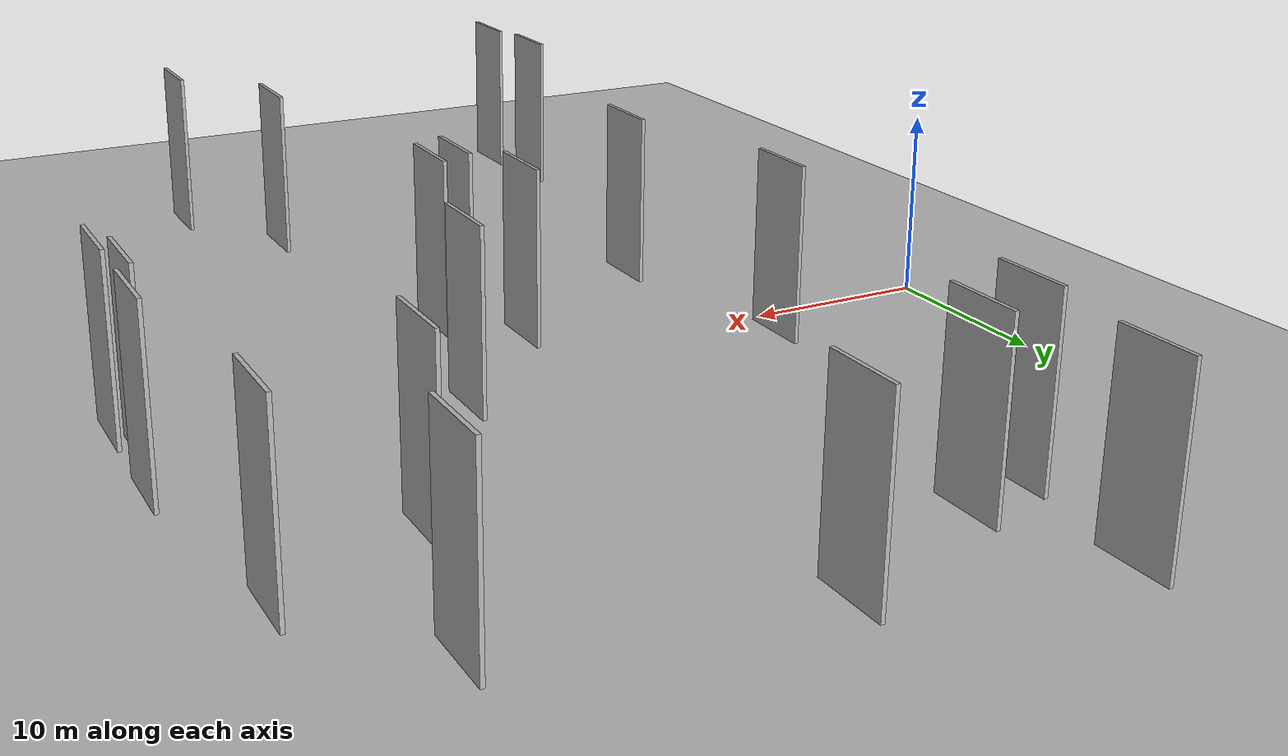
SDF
<?xml version="1.0" encoding="utf-8"?>

<sdf version="1.6">

   <world name="default">

      <gui fullscreen="0">

         <camera name="user_camera">

            <pose>-15 0 4.57585 0 0 0</pose>

            <view_controller>orbit</view_controller>

         </camera>

      </gui>

      <scene>

         <sky>

           <clouds>

             <speed>12</speed>

           </clouds>

         </sky>

         <ambient>0.4 0.4 0.4 1</ambient>

         <background>0.7 0.7 0.7 1</background>

         <shadows>1</shadows>

      </scene>

      <gravity>0 0 -9.8066</gravity>

      <magnetic_field>6e-06 2.3e-05 -4.2e-05</magnetic_field>

      <physics default="0" name="default_physics" type="ode">

         <ode>

            <solver>

               <type>quick</type>

               <iters>10</iters>

               <sor>1.0</sor>

               <use_dynamic_moi_rescaling>0</use_dynamic_moi_rescaling>

            </solver>

            <constraints>

               <cfm>0</cfm>

               <erp>0.2</erp>

               <contact_max_correcting_vel>100</contact_max_correcting_vel>

               <contact_surface_layer>0.001</contact_surface_layer>

            </constraints>

         </ode>

         <max_step_size>0.004</max_step_size>

         <real_time_factor>1</real_time_factor>

         <real_time_update_rate>250</real_time_update_rate>

      </physics>

      <light name="sun" type="directional">

         <cast_shadows>1</cast_shadows>

         <pose>0 0 10 0 0 0</pose>

         <diffuse>0.8 0.8 0.8 1</diffuse>

         <specular>0.2 0.2 0.2 1</specular>

         <attenuation>

            <range>1000</range>

            <constant>0.9</constant>

            <linear>0.01</linear>

            <quadratic>0.001</quadratic>

         </attenuation>

         <direction>-0.5 0.1 -0.9</direction>

      </light>

      <include>

         <name>ground_plane_1</name>

         <uri>model://HANNAS_ground_plane</uri>

         <pose>0 0 0  0 0 0</pose>

      </include>

      <include>

         <name>ground_plane_2</name>

         <uri>model://HANNAS_ground_plane</uri>

         <pose>100 0 0  0 0 0</pose>

      </include>

      <model name="HANNAS_wall_1">

         <static>1</static>

         <pose frame="">24.1434 28.0037 0.0 0.000000 0.000000 1.570796</pose>

         <link name="link">

            <pose frame="">0 0 5.00 0 0 0</pose>

            <collision name="collision">

               <geometry>

                  <box>

                     <size>4.00 0.2 10.00</size>

                  </box>

               </geometry>

               <max_contacts>10</max_contacts>

               <surface>

                  <contact>

                     <ode/>

                  </contact>

                  <bounce/>

                  <friction>

                     <torsional>

                        <ode/>

                     </torsional>

                     <ode/>

                  </friction>

               </surface>

            </collision>

            <visual name="visual">

               <cast_shadows>0</cast_shadows>

               <geometry>

                  <box>

                     <size>4.00 0.2 10.00</size>

                  </box>

               </geometry>

               <material>

                  <script>

                     <uri>model://HANNAS_wall/materials/scripts</uri>

                     <uri>model://HANNAS_wall/materials/textures</uri>

                     <name>vrc/HANNAS_wall</name>

                  </script>

               </material>

            </visual>

            <self_collide>0</self_collide>

            <enable_wind>0</enable_wind>

            <kinematic>0</kinematic>

         </link>

      </model>

      <model name="HANNAS_wall_2">

         <static>1</static>

         <pose frame="">29.9042 -22.8174 0.0 0.000000 0.000000 1.570796</pose>

         <link name="link">

            <pose frame="">0 0 5.00 0 0 0</pose>

            <collision name="collision">

               <geometry>

                  <box>

                     <size>4.00 0.2 10.00</size>

                  </box>

               </geometry>

               <max_contacts>10</max_contacts>

               <surface>

                  <contact>

                     <ode/>

                  </contact>

                  <bounce/>

                  <friction>

                     <torsional>

                        <ode/>

                     </torsional>

                     <ode/>

                  </friction>

               </surface>

            </collision>

            <visual name="visual">

               <cast_shadows>0</cast_shadows>

               <geometry>

                  <box>

                     <size>4.00 0.2 10.00</size>

                  </box>

               </geometry>

               <material>

                  <script>

                     <uri>model://HANNAS_wall/materials/scripts</uri>

                     <uri>model://HANNAS_wall/materials/textures</uri>

                     <name>vrc/HANNAS_wall</name>

                  </script>

               </material>

            </visual>

            <self_collide>0</self_collide>

            <enable_wind>0</enable_wind>

            <kinematic>0</kinematic>

         </link>

      </model>

      <model name="HANNAS_wall_3">

         <static>1</static>

         <pose frame="">44.8293 2.9508 0.0 0.000000 0.000000 1.570796</pose>

         <link name="link">

            <pose frame="">0 0 5.00 0 0 0</pose>

            <collision name="collision">

               <geometry>

                  <box>

                     <size>4.00 0.2 10.00</size>

                  </box>

               </geometry>

               <max_contacts>10</max_contacts>

               <surface>

                  <contact>

                     <ode/>

                  </contact>

                  <bounce/>

                  <friction>

                     <torsional>

                        <ode/>

                     </torsional>

                     <ode/>

                  </friction>

               </surface>

            </collision>

            <visual name="visual">

               <cast_shadows>0</cast_shadows>

               <geometry>

                  <box>

                     <size>4.00 0.2 10.00</size>

                  </box>

               </geometry>

               <material>

                  <script>

                     <uri>model://HANNAS_wall/materials/scripts</uri>

                     <uri>model://HANNAS_wall/materials/textures</uri>

                     <name>vrc/HANNAS_wall</name>

                  </script>

               </material>

            </visual>

            <self_collide>0</self_collide>

            <enable_wind>0</enable_wind>

            <kinematic>0</kinematic>

         </link>

      </model>

      <model name="HANNAS_wall_4">

         <static>1</static>

         <pose frame="">38.8895 25.2443 0.0 0.000000 0.000000 1.570796</pose>

         <link name="link">

            <pose frame="">0 0 5.00 0 0 0</pose>

            <collision name="collision">

               <geometry>

                  <box>

                     <size>4.00 0.2 10.00</size>

                  </box>

               </geometry>

               <max_contacts>10</max_contacts>

               <surface>

                  <contact>

                     <ode/>

                  </contact>

                  <bounce/>

                  <friction>

                     <torsional>

                        <ode/>

                     </torsional>

                     <ode/>

                  </friction>

               </surface>

            </collision>

            <visual name="visual">

               <cast_shadows>0</cast_shadows>

               <geometry>

                  <box>

                     <size>4.00 0.2 10.00</size>

                  </box>

               </geometry>

               <material>

                  <script>

                     <uri>model://HANNAS_wall/materials/scripts</uri>

                     <uri>model://HANNAS_wall/materials/textures</uri>

                     <name>vrc/HANNAS_wall</name>

                  </script>

               </material>

            </visual>

            <self_collide>0</self_collide>

            <enable_wind>0</enable_wind>

            <kinematic>0</kinematic>

         </link>

      </model>

      <model name="HANNAS_wall_5">

         <static>1</static>

         <pose frame="">26.8576 -5.7178 0.0 0.000000 0.000000 1.570796</pose>

         <link name="link">

            <pose frame="">0 0 5.00 0 0 0</pose>

            <collision name="collision">

               <geometry>

                  <box>

                     <size>4.00 0.2 10.00</size>

                  </box>

               </geometry>

               <max_contacts>10</max_contacts>

               <surface>

                  <contact>

                     <ode/>

                  </contact>

                  <bounce/>

                  <friction>

                     <torsional>

                        <ode/>

                     </torsional>

                     <ode/>

                  </friction>

               </surface>

            </collision>

            <visual name="visual">

               <cast_shadows>0</cast_shadows>

               <geometry>

                  <box>

                     <size>4.00 0.2 10.00</size>

                  </box>

               </geometry>

               <material>

                  <script>

                     <uri>model://HANNAS_wall/materials/scripts</uri>

                     <uri>model://HANNAS_wall/materials/textures</uri>

                     <name>vrc/HANNAS_wall</name>

                  </script>

               </material>

            </visual>

            <self_collide>0</self_collide>

            <enable_wind>0</enable_wind>

            <kinematic>0</kinematic>

         </link>

      </model>

      <model name="HANNAS_wall_6">

         <static>1</static>

         <pose frame="">15.5691 24.2123 0.0 0.000000 0.000000 1.570796</pose>

         <link name="link">

            <pose frame="">0 0 5.00 0 0 0</pose>

            <collision name="collision">

               <geometry>

                  <box>

                     <size>4.00 0.2 10.00</size>

                  </box>

               </geometry>

               <max_contacts>10</max_contacts>

               <surface>

                  <contact>

                     <ode/>

                  </contact>

                  <bounce/>

                  <friction>

                     <torsional>

                        <ode/>

                     </torsional>

                     <ode/>

                  </friction>

               </surface>

            </collision>

            <visual name="visual">

               <cast_shadows>0</cast_shadows>

               <geometry>

                  <box>

                     <size>4.00 0.2 10.00</size>

                  </box>

               </geometry>

               <material>

                  <script>

                     <uri>model://HANNAS_wall/materials/scripts</uri>

                     <uri>model://HANNAS_wall/materials/textures</uri>

                     <name>vrc/HANNAS_wall</name>

                  </script>

               </material>

            </visual>

            <self_collide>0</self_collide>

            <enable_wind>0</enable_wind>

            <kinematic>0</kinematic>

         </link>

      </model>

      <model name="HANNAS_wall_7">

         <static>1</static>

         <pose frame="">45.5169 0.6709 0.0 0.000000 0.000000 1.570796</pose>

         <link name="link">

            <pose frame="">0 0 5.00 0 0 0</pose>

            <collision name="collision">

               <geometry>

                  <box>

                     <size>4.00 0.2 10.00</size>

                  </box>

               </geometry>

               <max_contacts>10</max_contacts>

               <surface>

                  <contact>

                     <ode/>

                  </contact>

                  <bounce/>

                  <friction>

                     <torsional>

                        <ode/>

                     </torsional>

                     <ode/>

                  </friction>

               </surface>

            </collision>

            <visual name="visual">

               <cast_shadows>0</cast_shadows>

               <geometry>

                  <box>

                     <size>4.00 0.2 10.00</size>

                  </box>

               </geometry>

               <material>

                  <script>

                     <uri>model://HANNAS_wall/materials/scripts</uri>

                     <uri>model://HANNAS_wall/materials/textures</uri>

                     <name>vrc/HANNAS_wall</name>

                  </script>

               </material>

            </visual>

            <self_collide>0</self_collide>

            <enable_wind>0</enable_wind>

            <kinematic>0</kinematic>

         </link>

      </model>

      <model name="HANNAS_wall_8">

         <static>1</static>

         <pose frame="">11.2044 3.2929 0.0 0.000000 0.000000 1.570796</pose>

         <link name="link">

            <pose frame="">0 0 5.00 0 0 0</pose>

            <collision name="collision">

               <geometry>

                  <box>

                     <size>4.00 0.2 10.00</size>

                  </box>

               </geometry>

               <max_contacts>10</max_contacts>

               <surface>

                  <contact>

                     <ode/>

                  </contact>

                  <bounce/>

                  <friction>

                     <torsional>

                        <ode/>

                     </torsional>

                     <ode/>

                  </friction>

               </surface>

            </collision>

            <visual name="visual">

               <cast_shadows>0</cast_shadows>

               <geometry>

                  <box>

                     <size>4.00 0.2 10.00</size>

                  </box>

               </geometry>

               <material>

                  <script>

                     <uri>model://HANNAS_wall/materials/scripts</uri>

                     <uri>model://HANNAS_wall/materials/textures</uri>

                     <name>vrc/HANNAS_wall</name>

                  </script>

               </material>

            </visual>

            <self_collide>0</self_collide>

            <enable_wind>0</enable_wind>

            <kinematic>0</kinematic>

         </link>

      </model>

      <model name="HANNAS_wall_9">

         <static>1</static>

         <pose frame="">13.6939 -8.6763 0.0 0.000000 0.000000 1.570796</pose>

         <link name="link">

            <pose frame="">0 0 5.00 0 0 0</pose>

            <collision name="collision">

               <geometry>

                  <box>

                     <size>4.00 0.2 10.00</size>

                  </box>

               </geometry>

               <max_contacts>10</max_contacts>

               <surface>

                  <contact>

                     <ode/>

                  </contact>

                  <bounce/>

                  <friction>

                     <torsional>

                        <ode/>

                     </torsional>

                     <ode/>

                  </friction>

               </surface>

            </collision>

            <visual name="visual">

               <cast_shadows>0</cast_shadows>

               <geometry>

                  <box>

                     <size>4.00 0.2 10.00</size>

                  </box>

               </geometry>

               <material>

                  <script>

                     <uri>model://HANNAS_wall/materials/scripts</uri>

                     <uri>model://HANNAS_wall/materials/textures</uri>

                     <name>vrc/HANNAS_wall</name>

                  </script>

               </material>

            </visual>

            <self_collide>0</self_collide>

            <enable_wind>0</enable_wind>

            <kinematic>0</kinematic>

         </link>

      </model>

      <model name="HANNAS_wall_10">

         <static>1</static>

         <pose frame="">11.8837 22.8619 0.0 0.000000 0.000000 1.570796</pose>

         <link name="link">

            <pose frame="">0 0 5.00 0 0 0</pose>

            <collision name="collision">

               <geometry>

                  <box>

                     <size>4.00 0.2 10.00</size>

                  </box>

               </geometry>

               <max_contacts>10</max_contacts>

               <surface>

                  <contact>

                     <ode/>

                  </contact>

                  <bounce/>

                  <friction>

                     <torsional>

                        <ode/>

                     </torsional>

                     <ode/>

                  </friction>

               </surface>

            </collision>

            <visual name="visual">

               <cast_shadows>0</cast_shadows>

               <geometry>

                  <box>

                     <size>4.00 0.2 10.00</size>

                  </box>

               </geometry>

               <material>

                  <script>

                     <uri>model://HANNAS_wall/materials/scripts</uri>

                     <uri>model://HANNAS_wall/materials/textures</uri>

                     <name>vrc/HANNAS_wall</name>

                  </script>

               </material>

            </visual>

            <self_collide>0</self_collide>

            <enable_wind>0</enable_wind>

            <kinematic>0</kinematic>

         </link>

      </model>

      <model name="HANNAS_wall_11">

         <static>1</static>

         <pose frame="">23.3464 -2.1611 0.0 0.000000 0.000000 1.570796</pose>

         <link name="link">

            <pose frame="">0 0 5.00 0 0 0</pose>

            <collision name="collision">

               <geometry>

                  <box>

                     <size>4.00 0.2 10.00</size>

                  </box>

               </geometry>

               <max_contacts>10</max_contacts>

               <surface>

                  <contact>

                     <ode/>

                  </contact>

                  <bounce/>

                  <friction>

                     <torsional>

                        <ode/>

                     </torsional>

                     <ode/>

                  </friction>

               </surface>

            </collision>

            <visual name="visual">

               <cast_shadows>0</cast_shadows>

               <geometry>

                  <box>

                     <size>4.00 0.2 10.00</size>

                  </box>

               </geometry>

               <material>

                  <script>

                     <uri>model://HANNAS_wall/materials/scripts</uri>

                     <uri>model://HANNAS_wall/materials/textures</uri>

                     <name>vrc/HANNAS_wall</name>

                  </script>

               </material>

            </visual>

            <self_collide>0</self_collide>

            <enable_wind>0</enable_wind>

            <kinematic>0</kinematic>

         </link>

      </model>

      <model name="HANNAS_wall_12">

         <static>1</static>

         <pose frame="">33.8823 -29.7596 0.0 0.000000 0.000000 1.570796</pose>

         <link name="link">

            <pose frame="">0 0 5.00 0 0 0</pose>

            <collision name="collision">

               <geometry>

                  <box>

                     <size>4.00 0.2 10.00</size>

                  </box>

               </geometry>

               <max_contacts>10</max_contacts>

               <surface>

                  <contact>

                     <ode/>

                  </contact>

                  <bounce/>

                  <friction>

                     <torsional>

                        <ode/>

                     </torsional>

                     <ode/>

                  </friction>

               </surface>

            </collision>

            <visual name="visual">

               <cast_shadows>0</cast_shadows>

               <geometry>

                  <box>

                     <size>4.00 0.2 10.00</size>

                  </box>

               </geometry>

               <material>

                  <script>

                     <uri>model://HANNAS_wall/materials/scripts</uri>

                     <uri>model://HANNAS_wall/materials/textures</uri>

                     <name>vrc/HANNAS_wall</name>

                  </script>

               </material>

            </visual>

            <self_collide>0</self_collide>

            <enable_wind>0</enable_wind>

            <kinematic>0</kinematic>

         </link>

      </model>

      <model name="HANNAS_wall_13">

         <static>1</static>

         <pose frame="">43.8845 18.7872 0.0 0.000000 0.000000 1.570796</pose>

         <link name="link">

            <pose frame="">0 0 5.00 0 0 0</pose>

            <collision name="collision">

               <geometry>

                  <box>

                     <size>4.00 0.2 10.00</size>

                  </box>

               </geometry>

               <max_contacts>10</max_contacts>

               <surface>

                  <contact>

                     <ode/>

                  </contact>

                  <bounce/>

                  <friction>

                     <torsional>

                        <ode/>

                     </torsional>

                     <ode/>

                  </friction>

               </surface>

            </collision>

            <visual name="visual">

               <cast_shadows>0</cast_shadows>

               <geometry>

                  <box>

                     <size>4.00 0.2 10.00</size>

                  </box>

               </geometry>

               <material>

                  <script>

                     <uri>model://HANNAS_wall/materials/scripts</uri>

                     <uri>model://HANNAS_wall/materials/textures</uri>

                     <name>vrc/HANNAS_wall</name>

                  </script>

               </material>

            </visual>

            <self_collide>0</self_collide>

            <enable_wind>0</enable_wind>

            <kinematic>0</kinematic>

         </link>

      </model>

      <model name="HANNAS_wall_14">

         <static>1</static>

         <pose frame="">29.6014 4.9304 0.0 0.000000 0.000000 1.570796</pose>

         <link name="link">

            <pose frame="">0 0 5.00 0 0 0</pose>

            <collision name="collision">

               <geometry>

                  <box>

                     <size>4.00 0.2 10.00</size>

                  </box>

               </geometry>

               <max_contacts>10</max_contacts>

               <surface>

                  <contact>

                     <ode/>

                  </contact>

                  <bounce/>

                  <friction>

                     <torsional>

                        <ode/>

                     </torsional>

                     <ode/>

                  </friction>

               </surface>

            </collision>

            <visual name="visual">

               <cast_shadows>0</cast_shadows>

               <geometry>

                  <box>

                     <size>4.00 0.2 10.00</size>

                  </box>

               </geometry>

               <material>

                  <script>

                     <uri>model://HANNAS_wall/materials/scripts</uri>

                     <uri>model://HANNAS_wall/materials/textures</uri>

                     <name>vrc/HANNAS_wall</name>

                  </script>

               </material>

            </visual>

            <self_collide>0</self_collide>

            <enable_wind>0</enable_wind>

            <kinematic>0</kinematic>

         </link>

      </model>

      <model name="HANNAS_wall_15">

         <static>1</static>

         <pose frame="">12.7938 30.8055 0.0 0.000000 0.000000 1.570796</pose>

         <link name="link">

            <pose frame="">0 0 5.00 0 0 0</pose>

            <collision name="collision">

               <geometry>

                  <box>

                     <size>4.00 0.2 10.00</size>

                  </box>

               </geometry>

               <max_contacts>10</max_contacts>

               <surface>

                  <contact>

                     <ode/>

                  </contact>

                  <bounce/>

                  <friction>

                     <torsional>

                        <ode/>

                     </torsional>

                     <ode/>

                  </friction>

               </surface>

            </collision>

            <visual name="visual">

               <cast_shadows>0</cast_shadows>

               <geometry>

                  <box>

                     <size>4.00 0.2 10.00</size>

                  </box>

               </geometry>

               <material>

                  <script>

                     <uri>model://HANNAS_wall/materials/scripts</uri>

                     <uri>model://HANNAS_wall/materials/textures</uri>

                     <name>vrc/HANNAS_wall</name>

                  </script>

               </material>

            </visual>

            <self_collide>0</self_collide>

            <enable_wind>0</enable_wind>

            <kinematic>0</kinematic>

         </link>

      </model>

      <model name="HANNAS_wall_16">

         <static>1</static>

         <pose frame="">25.1034 -6.5087 0.0 0.000000 0.000000 1.570796</pose>

         <link name="link">

            <pose frame="">0 0 5.00 0 0 0</pose>

            <collision name="collision">

               <geometry>

                  <box>

                     <size>4.00 0.2 10.00</size>

                  </box>

               </geometry>

               <max_contacts>10</max_contacts>

               <surface>

                  <contact>

                     <ode/>

                  </contact>

                  <bounce/>

                  <friction>

                     <torsional>

                        <ode/>

                     </torsional>

                     <ode/>

                  </friction>

               </surface>

            </collision>

            <visual name="visual">

               <cast_shadows>0</cast_shadows>

               <geometry>

                  <box>

                     <size>4.00 0.2 10.00</size>

                  </box>

               </geometry>

               <material>

                  <script>

                     <uri>model://HANNAS_wall/materials/scripts</uri>

                     <uri>model://HANNAS_wall/materials/textures</uri>

                     <name>vrc/HANNAS_wall</name>

                  </script>

               </material>

            </visual>

            <self_collide>0</self_collide>

            <enable_wind>0</enable_wind>

            <kinematic>0</kinematic>

         </link>

      </model>

      <model name="HANNAS_wall_17">

         <static>1</static>

         <pose frame="">36.3381 15.7771 0.0 0.000000 0.000000 1.570796</pose>

         <link name="link">

            <pose frame="">0 0 5.00 0 0 0</pose>

            <collision name="collision">

               <geometry>

                  <box>

                     <size>4.00 0.2 10.00</size>

                  </box>

               </geometry>

               <max_contacts>10</max_contacts>

               <surface>

                  <contact>

                     <ode/>

                  </contact>

                  <bounce/>

                  <friction>

                     <torsional>

                        <ode/>

                     </torsional>

                     <ode/>

                  </friction>

               </surface>

            </collision>

            <visual name="visual">

               <cast_shadows>0</cast_shadows>

               <geometry>

                  <box>

                     <size>4.00 0.2 10.00</size>

                  </box>

               </geometry>

               <material>

                  <script>

                     <uri>model://HANNAS_wall/materials/scripts</uri>

                     <uri>model://HANNAS_wall/materials/textures</uri>

                     <name>vrc/HANNAS_wall</name>

                  </script>

               </material>

            </visual>

            <self_collide>0</self_collide>

            <enable_wind>0</enable_wind>

            <kinematic>0</kinematic>

         </link>

      </model>

      <model name="HANNAS_wall_18">

         <static>1</static>

         <pose frame="">45.5818 7.4328 0.0 0.000000 0.000000 1.570796</pose>

         <link name="link">

            <pose frame="">0 0 5.00 0 0 0</pose>

            <collision name="collision">

               <geometry>

                  <box>

                     <size>4.00 0.2 10.00</size>

                  </box>

               </geometry>

               <max_contacts>10</max_contacts>

               <surface>

                  <contact>

                     <ode/>

                  </contact>

                  <bounce/>

                  <friction>

                     <torsional>

                        <ode/>

                     </torsional>

                     <ode/>

                  </friction>

               </surface>

            </collision>

            <visual name="visual">

               <cast_shadows>0</cast_shadows>

               <geometry>

                  <box>

                     <size>4.00 0.2 10.00</size>

                  </box>

               </geometry>

               <material>

                  <script>

                     <uri>model://HANNAS_wall/materials/scripts</uri>

                     <uri>model://HANNAS_wall/materials/textures</uri>

                     <name>vrc/HANNAS_wall</name>

                  </script>

               </material>

            </visual>

            <self_collide>0</self_collide>

            <enable_wind>0</enable_wind>

            <kinematic>0</kinematic>

         </link>

      </model>

      <model name="HANNAS_wall_19">

         <static>1</static>

         <pose frame="">9.7224 -29.5368 0.0 0.000000 0.000000 1.570796</pose>

         <link name="link">

            <pose frame="">0 0 5.00 0 0 0</pose>

            <collision name="collision">

               <geometry>

                  <box>

                     <size>4.00 0.2 10.00</size>

                  </box>

               </geometry>

               <max_contacts>10</max_contacts>

               <surface>

                  <contact>

                     <ode/>

                  </contact>

                  <bounce/>

                  <friction>

                     <torsional>

                        <ode/>

                     </torsional>

                     <ode/>

                  </friction>

               </surface>

            </collision>

            <visual name="visual">

               <cast_shadows>0</cast_shadows>

               <geometry>

                  <box>

                     <size>4.00 0.2 10.00</size>

                  </box>

               </geometry>

               <material>

                  <script>

                     <uri>model://HANNAS_wall/materials/scripts</uri>

                     <uri>model://HANNAS_wall/materials/textures</uri>

                     <name>vrc/HANNAS_wall</name>

                  </script>

               </material>

            </visual>

            <self_collide>0</self_collide>

            <enable_wind>0</enable_wind>

            <kinematic>0</kinematic>

         </link>

      </model>

      <model name="HANNAS_wall_20">

         <static>1</static>

         <pose frame="">10.3254 -34.7184 0.0 0.000000 0.000000 1.570796</pose>

         <link name="link">

            <pose frame="">0 0 5.00 0 0 0</pose>

            <collision name="collision">

               <geometry>

                  <box>

                     <size>4.00 0.2 10.00</size>

                  </box>

               </geometry>

               <max_contacts>10</max_contacts>

               <surface>

                  <contact>

                     <ode/>

                  </contact>

                  <bounce/>

                  <friction>

                     <torsional>

                        <ode/>

                     </torsional>

                     <ode/>

                  </friction>

               </surface>

            </collision>

            <visual name="visual">

               <cast_shadows>0</cast_shadows>

               <geometry>

                  <box>

                     <size>4.00 0.2 10.00</size>

                  </box>

               </geometry>

               <material>

                  <script>

                     <uri>model://HANNAS_wall/materials/scripts</uri>

                     <uri>model://HANNAS_wall/materials/textures</uri>

                     <name>vrc/HANNAS_wall</name>

                  </script>

               </material>

            </visual>

            <self_collide>0</self_collide>

            <enable_wind>0</enable_wind>

            <kinematic>0</kinematic>

         </link>

      </model>

   </world>

</sdf>

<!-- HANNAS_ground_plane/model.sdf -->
<sdf version="1.4">
<model name="HANNAS_ground_plane">
  <static>true</static>
    <link name="link">
      <collision name="collision">
        <geometry>
          <plane>
            <normal>0 0 1</normal>
            <size>1000 1000</size>
          </plane>
        </geometry>
        <surface>
          <friction>
            <ode>
              <mu>100</mu>
              <mu2>50</mu2>
            </ode>
          </friction>
        </surface>
      </collision>
      <visual name="visual">
        <cast_shadows>false</cast_shadows>
        <geometry>
          <plane>
            <normal>0 0 1</normal>
            <size>1000 1000</size>
          </plane>
        </geometry>
        <material>
          <script>
            <uri>model://HANNAS_ground_plane/materials/scripts/HANNAS_ground_plane.material</uri>
	    <uri>model://HANNAS_ground_plane/materials/textures</uri>
            <name>HANNASGroundPlane/Image</name>
          </script>
        </material>
      </visual>
    </link>
  </model>
</sdf>
